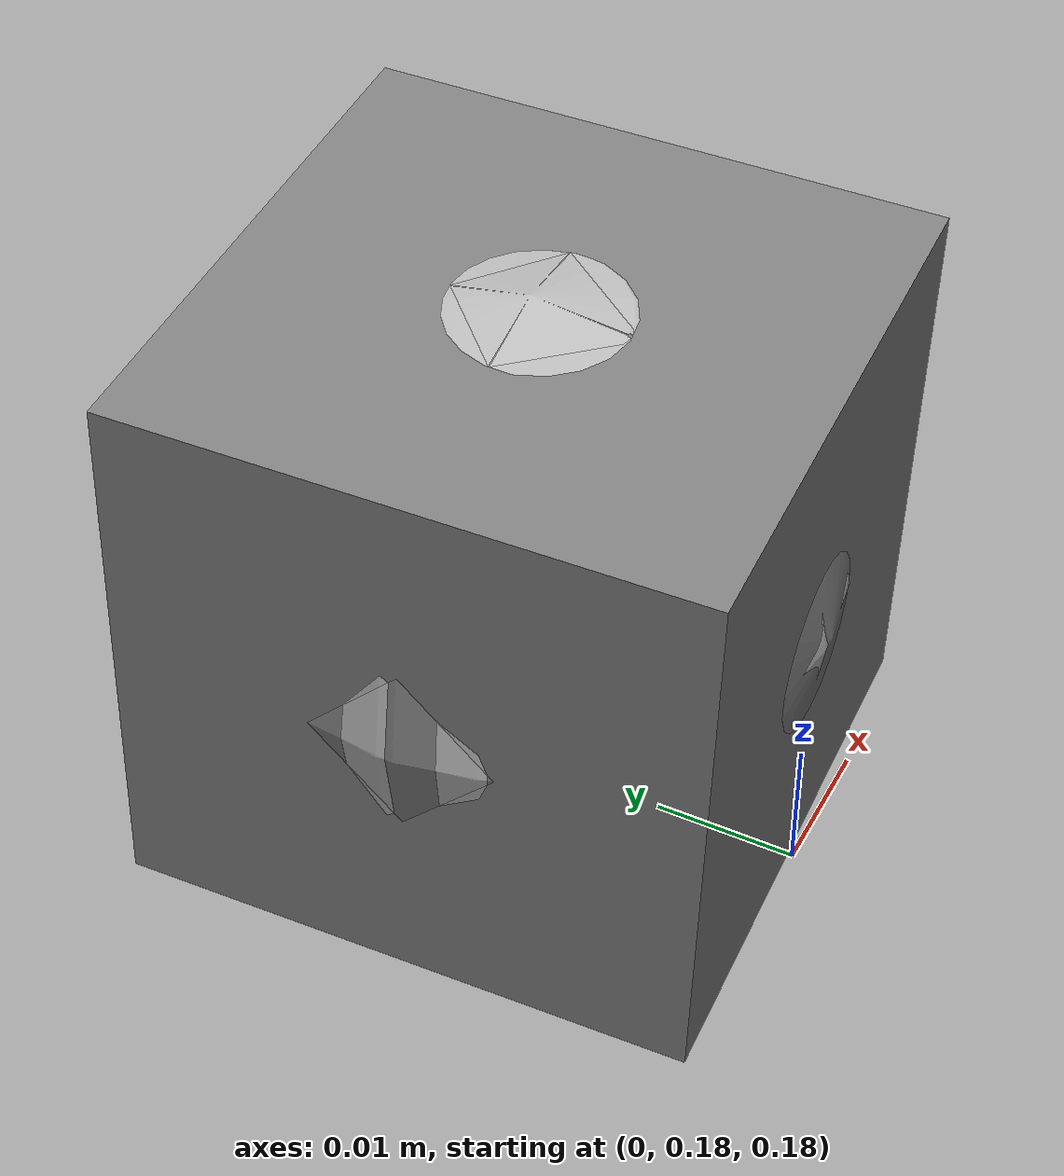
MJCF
<mujoco>
	<include file="Camera.xml"/>

	<!-- sensor for camera positions -->
	<sensor>
		<actuatorpos name="Sap_rgb_camera_jointz" actuator="A_rgb_camera_jointz"/>
		<actuatorpos name="Sap_rgb_camera_jointx" actuator="A_rgb_camera_jointx"/>

		<actuatorvel name="Sav_rgb_camera_jointz" actuator="A_rgb_camera_jointz"/>
		<actuatorvel name="Sav_rgb_camera_jointx" actuator="A_rgb_camera_jointx"/>

		<actuatorfrc name="Saf_rgb_camera_jointz" actuator="A_rgb_camera_jointz"/>
		<actuatorfrc name="Saf_rgb_camera_jointx" actuator="A_rgb_camera_jointx"/>
	</sensor>

	<!-- control camera angles -->
	<actuator>
		<position name="A_rgb_camera_jointz" joint="rgb_camera_jointz"  ctrlrange="-1.57 1.57"/>
		<position name="A_rgb_camera_jointx" joint="rgb_camera_jointx"  ctrlrange="-1.57 1.57"/>
	</actuator>

</mujoco>

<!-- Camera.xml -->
<mujoco>
	<worldbody>
		<!-- Camera base -->
		<body name="rgb_camera_base" mocap="true" pos="0 0.2 0.2">
			<geom conaffinity="0" contype="0" pos="0 0 0" rgba="1.0 1.0 1.0 0.5" size="0.021 0.021 0.021" type="sphere"/>
		</body>

		<!-- Camera arm -->
		<body name="rgb_camera_arm" pos="0 0.2 0.2" axisangle="0 0 1 3.141592">
			<joint class="free"/>
			<geom type="sphere" size="0.021 0.021 0.021" zaxis="0 1 0"/>

			<!-- Camera head -->
			<body name="rgb_camera_head" pos="0 0 0" axisangle="1 0 0 1.414">
				<joint name="rgb_camera_jointz" type="hinge" damping="0.4" pos="0 0 0" axis="0 0 1" range="-1.57 1.57"/>
				<joint name="rgb_camera_jointx" type="hinge" damping="0.4" pos="0 0 0" axis="1 0 0" range="-1.57 1.57"/>
				<geom type="box" size="0.02 0.02 0.02" zaxis="0 1 0"/>
				<camera name="rgb_camera" pos="0 0 0" euler="0 0 0" fovy="45" ipd="0.068"/>

			</body>
		</body>
	</worldbody>

	<!-- weld camera base and arm: control base position -> control camera position -->
	<equality>
		<weld body1="rgb_camera_base" body2="rgb_camera_arm" solref="0.01 1" solimp=".9 .9 0.01"/>
	</equality>

</mujoco>
